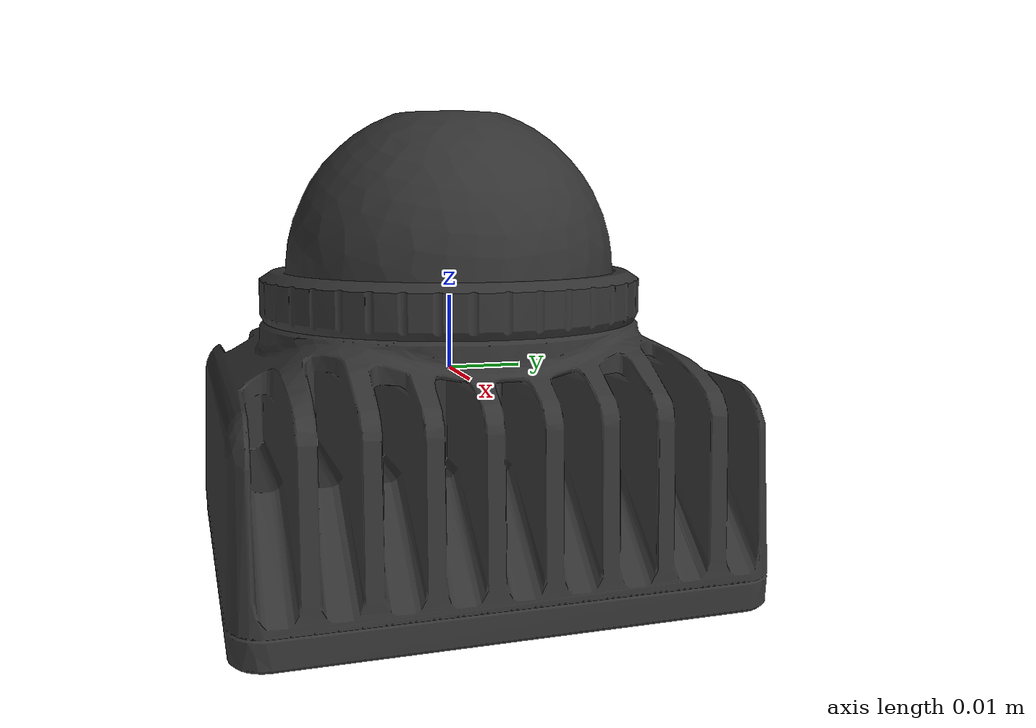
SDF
<?xml version="1.0" ?>
<sdf version="1.9">
  <model name="mid360">
    <static>false</static>
    <link name="livox_frame">
      <inertial>
        <mass>0.1</mass>
        <inertia>
          <ixx>0.0001</ixx> <ixy>0</ixy> <ixz>0</ixz>
          <iyy>0.0001</iyy> <iyz>0</iyz>
          <izz>0.0001</izz>
        </inertia>
      </inertial>

      <visual name="visual">
        <geometry>
          <mesh>
            <scale>1 1 1</scale>
            <uri>model://mid360/meshes/mid360.obj</uri>
          </mesh>
        </geometry>
        <material>
          <ambient>0.2 0.2 0.2 1</ambient>
          <diffuse>0.2 0.2 0.2 1</diffuse>
        </material>
      </visual>

      <collision name="collision">
        <geometry>
          <mesh>
            <scale>1 1 1</scale>
            <uri>model://mid360/meshes/mid360collision.obj</uri>
          </mesh>
        </geometry>
      </collision>

      <sensor name="livox_imu" type="imu">
        <always_on>true</always_on> <update_rate>200</update_rate>
        <topic>/livox/imu</topic>
        <imu>
          <angular_velocity>
            <x><noise type="gaussian"><mean>0</mean><stddev>0.0001</stddev></noise></x>
            <y><noise type="gaussian"><mean>0</mean><stddev>0.0001</stddev></noise></y>
            <z><noise type="gaussian"><mean>0</mean><stddev>0.0001</stddev></noise></z>
          </angular_velocity>
          <linear_acceleration>
            <x><noise type="gaussian"><mean>0</mean><stddev>0.001</stddev></noise></x>
            <y><noise type="gaussian"><mean>0</mean><stddev>0.001</stddev></noise></y>
            <z><noise type="gaussian"><mean>0</mean><stddev>0.001</stddev></noise></z>
          </linear_acceleration>
        </imu>
      </sensor>

      <sensor name="livox_lidar" type="custom">
        <pose>0 0 0 0 0 -1.57</pose>
        <plugin filename="libRGLServerPluginInstance.so" name="rgl::RGLServerPluginInstance">
          <range>
            <min>0.4</min> <!-- questionable-->
            <max>100</max> <!-- questionable-->
          </range>
          <update_rate>50</update_rate> <!-- questionable-->
          <update_on_paused_sim>false</update_on_paused_sim>
          <topic>/livox/lidar</topic>
          <frame>livox_lidar</frame>
          <pattern_preset>Livox Mid360</pattern_preset>
        </plugin>
      </sensor>
    </link>
  </model>
</sdf>
